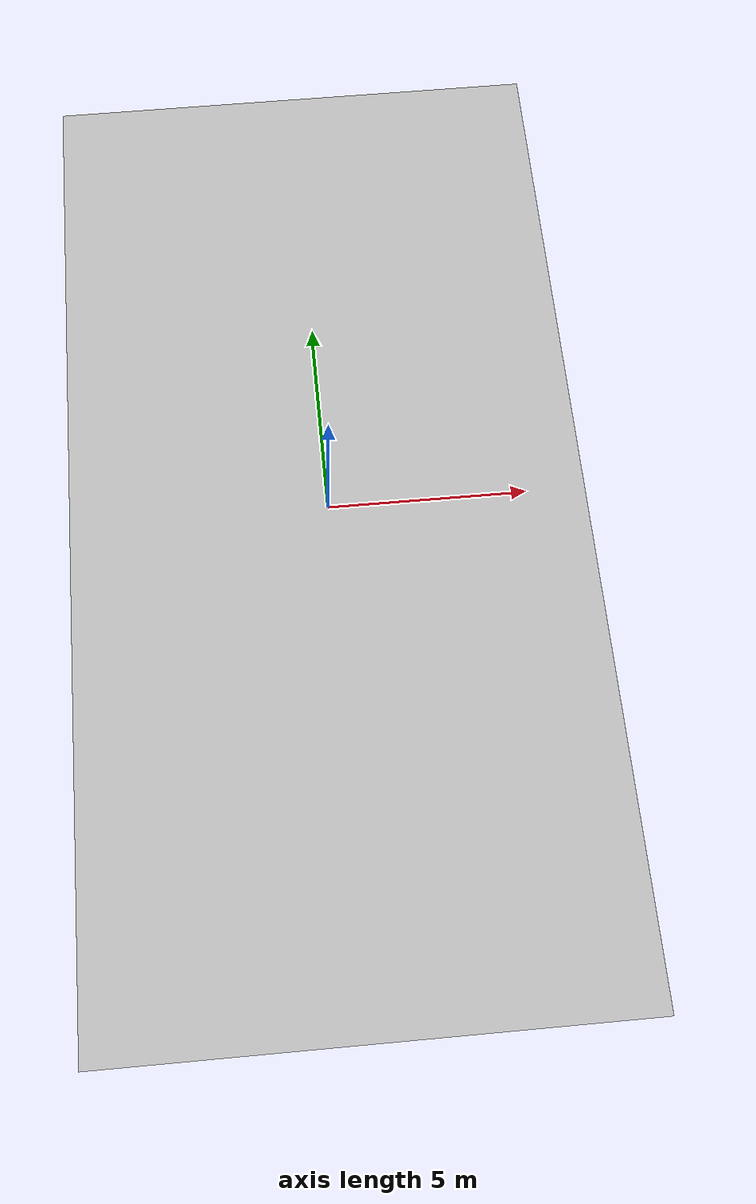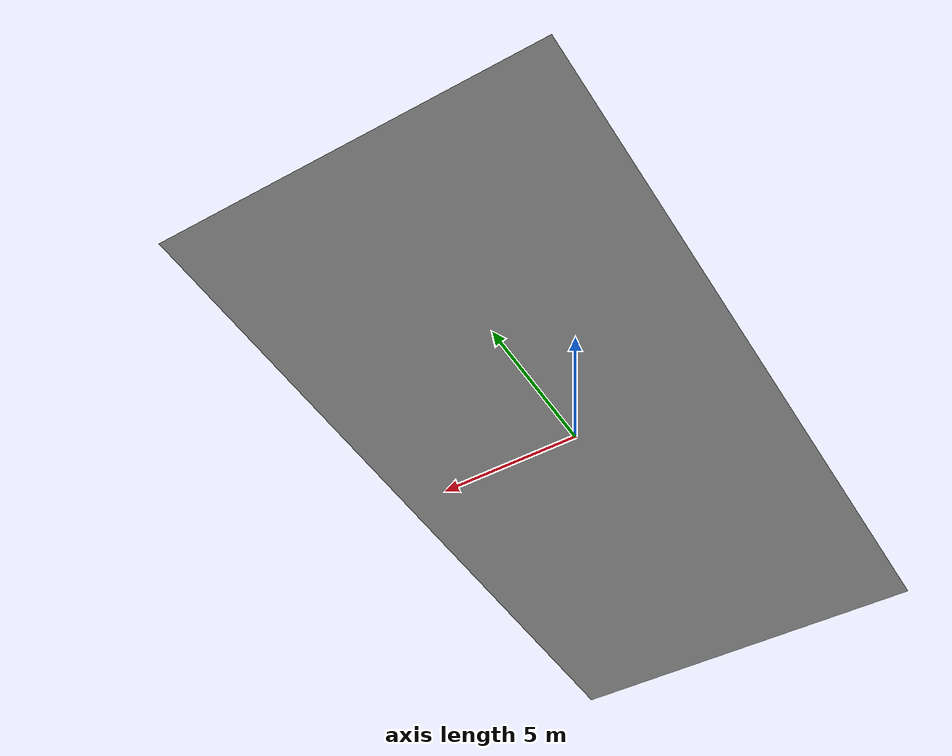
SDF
<sdf version="1.6">
    <model name='floor'>
      <pose frame=''>0 0 0 0 -0 0</pose>
      <static>true</static>
      <link name='link'>
        <collision name='collision'>
          <pose frame=''>0 0 -0.05 0 -0 0</pose>
          <geometry>
            <box>
              <size>20 40 0.1</size>
            </box>
          </geometry>
          <max_contacts>10</max_contacts>
          <surface>
            <contact>
              <ode/>
            </contact>
            <bounce/>
            <friction>
              <torsional>
                <ode/>
              </torsional>
              <ode/>
            </friction>
          </surface>
        </collision>
        <visual name='visual'>
            <geometry>
              <mesh>
                <scale>1 1 1</scale>
                <uri>model://basketball_floor/meshes/floor.dae</uri>
              </mesh>
            </geometry>
        </visual>
        <self_collide>0</self_collide>
        <kinematic>0</kinematic>
      </link>
    </model>
</sdf>
